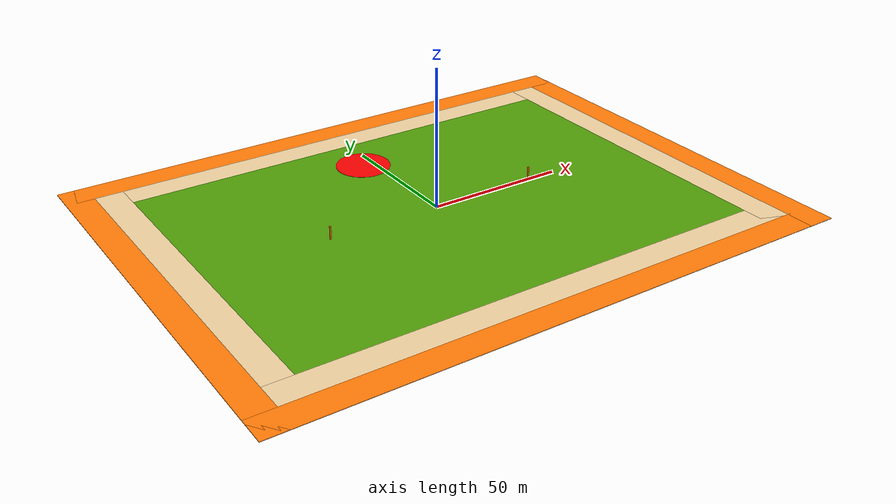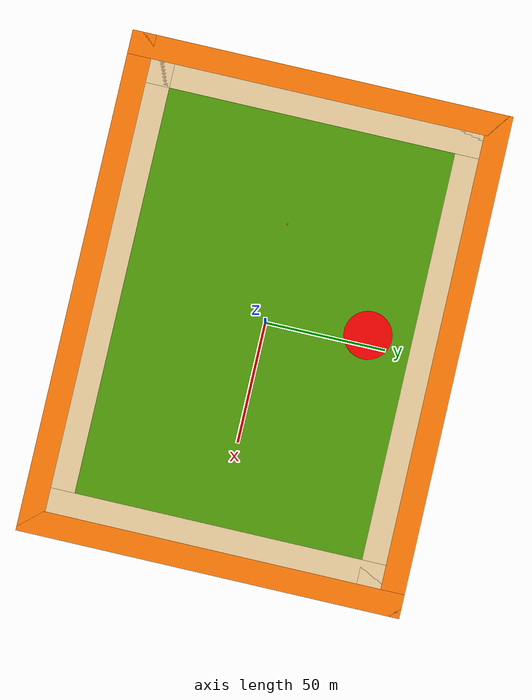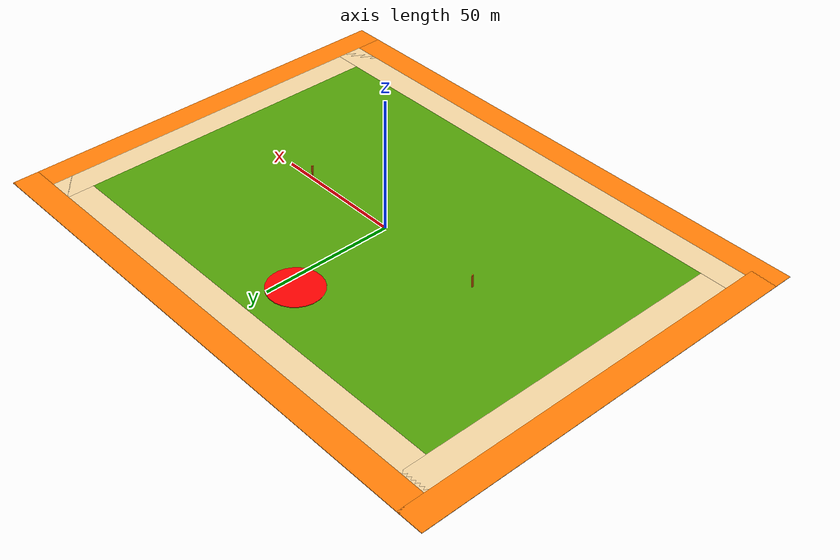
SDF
<sdf version="1.6">
 <world name="default">
  <light name="sun" type="directional">
   <pose>0 0 10 0 -0 0</pose>
   <diffuse>0.8 0.8 0.8 1</diffuse>
   <specular>0.2 0.2 0.2 1</specular>
   <attenuation>
    <range>1000</range>
    <constant>0.9</constant>
    <linear>0.01</linear>
    <quadratic>0.001</quadratic>
   </attenuation>
   <direction>-0.5 0.1 -0.9</direction>
  </light>
  <gravity>0 0 -9.8</gravity>
  <magnetic_field>6e-06 2.3e-05 -4.2e-05</magnetic_field>
  <atmosphere type="adiabatic"/>
  <physics name="default_physics" default="0" type="ode">
   <max_step_size>0.001</max_step_size>
   <real_time_factor>1</real_time_factor>
   <real_time_update_rate>1000</real_time_update_rate>
  </physics>
  <scene><ambient>0.4 0.4 0.4 1</ambient><background>0.7 0.7 0.7 1</background><shadows>1</shadows></scene>
  <spherical_coordinates>
   <surface_model>EARTH_WGS84</surface_model>
   <latitude_deg>0</latitude_deg>
   <longitude_deg>0</longitude_deg>
   <elevation>0</elevation>
   <heading_deg>0</heading_deg>
  </spherical_coordinates>
  <model name="area">
   <link name="link_2">
    <inertial>
     <mass>89.6892</mass>
     <inertia><ixx>2228.16</ixx><ixy>0</ixy><ixz>0</ixz><iyy>2228.16</iyy><iyz>0</iyz><izz>4455.56</izz></inertia>
    </inertial>
    <pose>-0.084386 0.192992 0 0 -0 0</pose>
    <visual name="visual">
     <geometry><cylinder><radius>9.96773</radius><length>0.225675</length></cylinder></geometry>
     <material>
      <lighting>1</lighting>
      <script><uri>file://media/materials/scripts/gazebo.material</uri><name>Gazebo/Grey</name></script>
      <shader type="pixel"><normal_map>__default__</normal_map></shader>
      <ambient>0.953 0 0 1</ambient>
      <diffuse>0.7 0.7 0.7 1</diffuse>
      <specular>0.01 0.01 0.01 1</specular>
      <emissive>0 0 0 1</emissive>
     </material>
    </visual>
    <collision name="collision">
     <geometry><cylinder><radius>9.96773</radius><length>0.225675</length></cylinder></geometry>
     <surface>
      <friction>
       <ode><mu>1</mu><mu2>1</mu2><fdir1>0 0 0</fdir1><slip1>0</slip1><slip2>0</slip2></ode>
       <torsional>
        <coefficient>1</coefficient>
        <patch_radius>0</patch_radius>
        <surface_radius>0</surface_radius>
        <use_patch_radius>1</use_patch_radius>
        <ode><slip>0</slip></ode>
       </torsional>
      </friction>
      <bounce><restitution_coefficient>0</restitution_coefficient><threshold>1e+06</threshold></bounce>
      <contact>
       <collide_without_contact>0</collide_without_contact>
       <collide_without_contact_bitmask>1</collide_without_contact_bitmask>
       <collide_bitmask>1</collide_bitmask>
       <ode>
        <soft_cfm>0</soft_cfm>
        <soft_erp>0.2</soft_erp>
        <kp>1e+13</kp>
        <kd>1</kd>
        <max_vel>0.01</max_vel>
        <min_depth>0</min_depth>
       </ode>
       <bullet>
        <split_impulse>1</split_impulse>
        <split_impulse_penetration_threshold>-0.01</split_impulse_penetration_threshold>
        <soft_cfm>0</soft_cfm>
        <soft_erp>0.2</soft_erp>
        <kp>1e+13</kp>
        <kd>1</kd>
       </bullet>
      </contact>
     </surface>
    </collision>
   </link>
   <static>0</static>
   <pose>-4.27218 41.8251 0.312837 0.008005 -0.012822 0.699371</pose>
  </model>
  <model name="Untitled">
   <link name="Wall_38">
    <pose>0 65 0 0 -0 0</pose>
    <visual name="Wall_38_Visual">
     <pose>0 0 0.1 0 -0 0</pose>
     <geometry><box><size>190 10 0.2</size></box></geometry>
     <material>
      <script><uri>file://media/materials/scripts/gazebo.material</uri><name>Gazebo/Grey</name></script>
      <ambient>0.921569 0.807843 0.615686 1</ambient>
      <shader type="pixel"/>
     </material>
     <meta><layer>0</layer></meta>
    </visual>
    <collision name="Wall_38_Collision">
     <pose>0 0 0.1 0 -0 0</pose>
     <geometry><box><size>190 10 0.2</size></box></geometry>
     <surface>
      <friction>
       <ode><mu>1</mu><mu2>1</mu2><fdir1>0 0 0</fdir1><slip1>0</slip1><slip2>0</slip2></ode>
       <torsional>
        <coefficient>1</coefficient>
        <patch_radius>0</patch_radius>
        <surface_radius>0</surface_radius>
        <use_patch_radius>1</use_patch_radius>
        <ode><slip>0</slip></ode>
       </torsional>
      </friction>
      <bounce><restitution_coefficient>0</restitution_coefficient><threshold>1e+06</threshold></bounce>
      <contact>
       <collide_without_contact>0</collide_without_contact>
       <collide_without_contact_bitmask>1</collide_without_contact_bitmask>
       <collide_bitmask>1</collide_bitmask>
       <ode>
        <soft_cfm>0</soft_cfm>
        <soft_erp>0.2</soft_erp>
        <kp>1e+13</kp>
        <kd>1</kd>
        <max_vel>0.01</max_vel>
        <min_depth>0</min_depth>
       </ode>
       <bullet>
        <split_impulse>1</split_impulse>
        <split_impulse_penetration_threshold>-0.01</split_impulse_penetration_threshold>
        <soft_cfm>0</soft_cfm>
        <soft_erp>0.2</soft_erp>
        <kp>1e+13</kp>
        <kd>1</kd>
       </bullet>
      </contact>
     </surface>
    </collision>
   </link>
   <link name="Wall_42">
    <pose>0 -65 0 0 -0 0</pose>
    <visual name="Wall_42_Visual">
     <pose>0 0 0.1 0 -0 0</pose>
     <geometry><box><size>190 10 0.2</size></box></geometry>
     <material>
      <script><uri>file://media/materials/scripts/gazebo.material</uri><name>Gazebo/Grey</name></script>
      <ambient>0.921569 0.807843 0.615686 1</ambient>
      <shader type="pixel"/>
     </material>
     <meta><layer>0</layer></meta>
    </visual>
    <collision name="Wall_42_Collision">
     <pose>0 0 0.1 0 -0 0</pose>
     <geometry><box><size>190 10 0.2</size></box></geometry>
     <surface>
      <friction>
       <ode><mu>1</mu><mu2>1</mu2><fdir1>0 0 0</fdir1><slip1>0</slip1><slip2>0</slip2></ode>
       <torsional>
        <coefficient>1</coefficient>
        <patch_radius>0</patch_radius>
        <surface_radius>0</surface_radius>
        <use_patch_radius>1</use_patch_radius>
        <ode><slip>0</slip></ode>
       </torsional>
      </friction>
      <bounce><restitution_coefficient>0</restitution_coefficient><threshold>1e+06</threshold></bounce>
      <contact>
       <collide_without_contact>0</collide_without_contact>
       <collide_without_contact_bitmask>1</collide_without_contact_bitmask>
       <collide_bitmask>1</collide_bitmask>
       <ode>
        <soft_cfm>0</soft_cfm>
        <soft_erp>0.2</soft_erp>
        <kp>1e+13</kp>
        <kd>1</kd>
        <max_vel>0.01</max_vel>
        <min_depth>0</min_depth>
       </ode>
       <bullet>
        <split_impulse>1</split_impulse>
        <split_impulse_penetration_threshold>-0.01</split_impulse_penetration_threshold>
        <soft_cfm>0</soft_cfm>
        <soft_erp>0.2</soft_erp>
        <kp>1e+13</kp>
        <kd>1</kd>
       </bullet>
      </contact>
     </surface>
    </collision>
   </link>
   <link name="Wall_45">
    <pose>-90 0 0 0 0 -1.5708</pose>
    <visual name="Wall_45_Visual">
     <pose>0 0 0.1 0 -0 0</pose>
     <geometry><box><size>140 10 0.2</size></box></geometry>
     <material>
      <script><uri>file://media/materials/scripts/gazebo.material</uri><name>Gazebo/Grey</name></script>
      <ambient>0.921569 0.807843 0.615686 1</ambient>
      <shader type="pixel"/>
     </material>
     <meta><layer>0</layer></meta>
    </visual>
    <collision name="Wall_45_Collision">
     <pose>0 0 0.1 0 -0 0</pose>
     <geometry><box><size>140 10 0.2</size></box></geometry>
     <surface>
      <friction>
       <ode><mu>1</mu><mu2>1</mu2><fdir1>0 0 0</fdir1><slip1>0</slip1><slip2>0</slip2></ode>
       <torsional>
        <coefficient>1</coefficient>
        <patch_radius>0</patch_radius>
        <surface_radius>0</surface_radius>
        <use_patch_radius>1</use_patch_radius>
        <ode><slip>0</slip></ode>
       </torsional>
      </friction>
      <bounce><restitution_coefficient>0</restitution_coefficient><threshold>1e+06</threshold></bounce>
      <contact>
       <collide_without_contact>0</collide_without_contact>
       <collide_without_contact_bitmask>1</collide_without_contact_bitmask>
       <collide_bitmask>1</collide_bitmask>
       <ode>
        <soft_cfm>0</soft_cfm>
        <soft_erp>0.2</soft_erp>
        <kp>1e+13</kp>
        <kd>1</kd>
        <max_vel>0.01</max_vel>
        <min_depth>0</min_depth>
       </ode>
       <bullet>
        <split_impulse>1</split_impulse>
        <split_impulse_penetration_threshold>-0.01</split_impulse_penetration_threshold>
        <soft_cfm>0</soft_cfm>
        <soft_erp>0.2</soft_erp>
        <kp>1e+13</kp>
        <kd>1</kd>
       </bullet>
      </contact>
     </surface>
    </collision>
   </link>
   <link name="Wall_47">
    <pose>90 0 0 0 0 -1.5708</pose>
    <visual name="Wall_47_Visual">
     <pose>0 0 0.1 0 -0 0</pose>
     <geometry><box><size>140 10 0.2</size></box></geometry>
     <material>
      <script><uri>file://media/materials/scripts/gazebo.material</uri><name>Gazebo/Grey</name></script>
      <ambient>0.921569 0.807843 0.615686 1</ambient>
      <shader type="pixel"/>
     </material>
     <meta><layer>0</layer></meta>
    </visual>
    <collision name="Wall_47_Collision">
     <pose>0 0 0.1 0 -0 0</pose>
     <geometry><box><size>140 10 0.2</size></box></geometry>
     <surface>
      <friction>
       <ode><mu>1</mu><mu2>1</mu2><fdir1>0 0 0</fdir1><slip1>0</slip1><slip2>0</slip2></ode>
       <torsional>
        <coefficient>1</coefficient>
        <patch_radius>0</patch_radius>
        <surface_radius>0</surface_radius>
        <use_patch_radius>1</use_patch_radius>
        <ode><slip>0</slip></ode>
       </torsional>
      </friction>
      <bounce><restitution_coefficient>0</restitution_coefficient><threshold>1e+06</threshold></bounce>
      <contact>
       <collide_without_contact>0</collide_without_contact>
       <collide_without_contact_bitmask>1</collide_without_contact_bitmask>
       <collide_bitmask>1</collide_bitmask>
       <ode>
        <soft_cfm>0</soft_cfm>
        <soft_erp>0.2</soft_erp>
        <kp>1e+13</kp>
        <kd>1</kd>
        <max_vel>0.01</max_vel>
        <min_depth>0</min_depth>
       </ode>
       <bullet>
        <split_impulse>1</split_impulse>
        <split_impulse_penetration_threshold>-0.01</split_impulse_penetration_threshold>
        <soft_cfm>0</soft_cfm>
        <soft_erp>0.2</soft_erp>
        <kp>1e+13</kp>
        <kd>1</kd>
       </bullet>
      </contact>
     </surface>
    </collision>
   </link>
   <link name="Wall_51">
    <pose>100 0 0 0 0 -1.5708</pose>
    <visual name="Wall_51_Visual">
     <pose>0 0 0.1 0 -0 0</pose>
     <geometry><box><size>160 10 0.2</size></box></geometry>
     <material>
      <script><uri>file://media/materials/scripts/gazebo.material</uri><name>Gazebo/Grey</name></script>
      <ambient>0.996078 0.47451 0.0196078 1</ambient>
      <shader type="pixel"/>
     </material>
     <meta><layer>0</layer></meta>
    </visual>
    <collision name="Wall_51_Collision">
     <pose>0 0 0.1 0 -0 0</pose>
     <geometry><box><size>160 10 0.2</size></box></geometry>
     <surface>
      <friction>
       <ode><mu>1</mu><mu2>1</mu2><fdir1>0 0 0</fdir1><slip1>0</slip1><slip2>0</slip2></ode>
       <torsional>
        <coefficient>1</coefficient>
        <patch_radius>0</patch_radius>
        <surface_radius>0</surface_radius>
        <use_patch_radius>1</use_patch_radius>
        <ode><slip>0</slip></ode>
       </torsional>
      </friction>
      <bounce><restitution_coefficient>0</restitution_coefficient><threshold>1e+06</threshold></bounce>
      <contact>
       <collide_without_contact>0</collide_without_contact>
       <collide_without_contact_bitmask>1</collide_without_contact_bitmask>
       <collide_bitmask>1</collide_bitmask>
       <ode>
        <soft_cfm>0</soft_cfm>
        <soft_erp>0.2</soft_erp>
        <kp>1e+13</kp>
        <kd>1</kd>
        <max_vel>0.01</max_vel>
        <min_depth>0</min_depth>
       </ode>
       <bullet>
        <split_impulse>1</split_impulse>
        <split_impulse_penetration_threshold>-0.01</split_impulse_penetration_threshold>
        <soft_cfm>0</soft_cfm>
        <soft_erp>0.2</soft_erp>
        <kp>1e+13</kp>
        <kd>1</kd>
       </bullet>
      </contact>
     </surface>
    </collision>
   </link>
   <link name="Wall_54">
    <pose>-100 0 0 0 0 -1.5708</pose>
    <visual name="Wall_54_Visual">
     <pose>0 0 0.1 0 -0 0</pose>
     <geometry><box><size>160 10 0.2</size></box></geometry>
     <material>
      <script><uri>file://media/materials/scripts/gazebo.material</uri><name>Gazebo/Grey</name></script>
      <ambient>0.996078 0.47451 0.0196078 1</ambient>
      <shader type="pixel"/>
     </material>
     <meta><layer>0</layer></meta>
    </visual>
    <collision name="Wall_54_Collision">
     <pose>0 0 0.1 0 -0 0</pose>
     <geometry><box><size>160 10 0.2</size></box></geometry>
     <surface>
      <friction>
       <ode><mu>1</mu><mu2>1</mu2><fdir1>0 0 0</fdir1><slip1>0</slip1><slip2>0</slip2></ode>
       <torsional>
        <coefficient>1</coefficient>
        <patch_radius>0</patch_radius>
        <surface_radius>0</surface_radius>
        <use_patch_radius>1</use_patch_radius>
        <ode><slip>0</slip></ode>
       </torsional>
      </friction>
      <bounce><restitution_coefficient>0</restitution_coefficient><threshold>1e+06</threshold></bounce>
      <contact>
       <collide_without_contact>0</collide_without_contact>
       <collide_without_contact_bitmask>1</collide_without_contact_bitmask>
       <collide_bitmask>1</collide_bitmask>
       <ode>
        <soft_cfm>0</soft_cfm>
        <soft_erp>0.2</soft_erp>
        <kp>1e+13</kp>
        <kd>1</kd>
        <max_vel>0.01</max_vel>
        <min_depth>0</min_depth>
       </ode>
       <bullet>
        <split_impulse>1</split_impulse>
        <split_impulse_penetration_threshold>-0.01</split_impulse_penetration_threshold>
        <soft_cfm>0</soft_cfm>
        <soft_erp>0.2</soft_erp>
        <kp>1e+13</kp>
        <kd>1</kd>
       </bullet>
      </contact>
     </surface>
    </collision>
   </link>
   <link name="Wall_56">
    <pose>0 75 0 0 -0 0</pose>
    <visual name="Wall_56_Visual">
     <pose>0 0 0.1 0 -0 0</pose>
     <geometry><box><size>210 10 0.2</size></box></geometry>
     <material>
      <script><uri>file://media/materials/scripts/gazebo.material</uri><name>Gazebo/Grey</name></script>
      <ambient>0.996078 0.47451 0.0196078 1</ambient>
      <shader type="pixel"/>
     </material>
     <meta><layer>0</layer></meta>
    </visual>
    <collision name="Wall_56_Collision">
     <pose>0 0 0.1 0 -0 0</pose>
     <geometry><box><size>210 10 0.2</size></box></geometry>
     <surface>
      <friction>
       <ode><mu>1</mu><mu2>1</mu2><fdir1>0 0 0</fdir1><slip1>0</slip1><slip2>0</slip2></ode>
       <torsional>
        <coefficient>1</coefficient>
        <patch_radius>0</patch_radius>
        <surface_radius>0</surface_radius>
        <use_patch_radius>1</use_patch_radius>
        <ode><slip>0</slip></ode>
       </torsional>
      </friction>
      <bounce><restitution_coefficient>0</restitution_coefficient><threshold>1e+06</threshold></bounce>
      <contact>
       <collide_without_contact>0</collide_without_contact>
       <collide_without_contact_bitmask>1</collide_without_contact_bitmask>
       <collide_bitmask>1</collide_bitmask>
       <ode>
        <soft_cfm>0</soft_cfm>
        <soft_erp>0.2</soft_erp>
        <kp>1e+13</kp>
        <kd>1</kd>
        <max_vel>0.01</max_vel>
        <min_depth>0</min_depth>
       </ode>
       <bullet>
        <split_impulse>1</split_impulse>
        <split_impulse_penetration_threshold>-0.01</split_impulse_penetration_threshold>
        <soft_cfm>0</soft_cfm>
        <soft_erp>0.2</soft_erp>
        <kp>1e+13</kp>
        <kd>1</kd>
       </bullet>
      </contact>
     </surface>
    </collision>
   </link>
   <link name="Wall_60">
    <pose>0 -75 0 0 -0 0</pose>
    <visual name="Wall_60_Visual">
     <pose>0 0 0.1 0 -0 0</pose>
     <geometry><box><size>210 10 0.2</size></box></geometry>
     <material>
      <script><uri>file://media/materials/scripts/gazebo.material</uri><name>Gazebo/Grey</name></script>
      <ambient>0.996078 0.47451 0.0196078 1</ambient>
      <shader type="pixel"/>
     </material>
     <meta><layer>0</layer></meta>
    </visual>
    <collision name="Wall_60_Collision">
     <pose>0 0 0.1 0 -0 0</pose>
     <geometry><box><size>210 10 0.2</size></box></geometry>
     <surface>
      <friction>
       <ode><mu>1</mu><mu2>1</mu2><fdir1>0 0 0</fdir1><slip1>0</slip1><slip2>0</slip2></ode>
       <torsional>
        <coefficient>1</coefficient>
        <patch_radius>0</patch_radius>
        <surface_radius>0</surface_radius>
        <use_patch_radius>1</use_patch_radius>
        <ode><slip>0</slip></ode>
       </torsional>
      </friction>
      <bounce><restitution_coefficient>0</restitution_coefficient><threshold>1e+06</threshold></bounce>
      <contact>
       <collide_without_contact>0</collide_without_contact>
       <collide_without_contact_bitmask>1</collide_without_contact_bitmask>
       <collide_bitmask>1</collide_bitmask>
       <ode>
        <soft_cfm>0</soft_cfm>
        <soft_erp>0.2</soft_erp>
        <kp>1e+13</kp>
        <kd>1</kd>
        <max_vel>0.01</max_vel>
        <min_depth>0</min_depth>
       </ode>
       <bullet>
        <split_impulse>1</split_impulse>
        <split_impulse_penetration_threshold>-0.01</split_impulse_penetration_threshold>
        <soft_cfm>0</soft_cfm>
        <soft_erp>0.2</soft_erp>
        <kp>1e+13</kp>
        <kd>1</kd>
       </bullet>
      </contact>
     </surface>
    </collision>
   </link>
   <static>1</static>
  </model>
  <model name="Untitled_0">
   <pose>-1.24292 -0.308113 0 0 -0 0</pose>
   <link name="Wall_0">
    <collision name="Wall_0_Collision">
     <geometry><box><size>0.5 0.5 5</size></box></geometry>
     <pose>0 0 2.5 0 -0 0</pose>
    </collision>
    <visual name="Wall_0_Visual">
     <pose>0 0 2.5 0 -0 0</pose>
     <geometry><box><size>0.5 0.5 5</size></box></geometry>
     <material>
      <script><uri>file://media/materials/scripts/gazebo.material</uri><name>Gazebo/Grey</name></script>
      <ambient>0.996078 0.47451 0.0196078 1</ambient>
     </material>
     <meta><layer>0</layer></meta>
    </visual>
    <pose>-40 0 0 0 -0 0</pose>
   </link>
   <link name="Wall_2">
    <collision name="Wall_2_Collision">
     <geometry><box><size>0.5 0.5 5</size></box></geometry>
     <pose>0 0 2.5 0 -0 0</pose>
    </collision>
    <visual name="Wall_2_Visual">
     <pose>0 0 2.5 0 -0 0</pose>
     <geometry><box><size>0.5 0.5 5</size></box></geometry>
     <material>
      <script><uri>file://media/materials/scripts/gazebo.material</uri><name>Gazebo/Grey</name></script>
      <ambient>0.996078 0.47451 0.0196078 1</ambient>
     </material>
     <meta><layer>0</layer></meta>
    </visual>
    <pose>40 0 0 0 -0 0</pose>
   </link>
   <static>1</static>
  </model>
  <model name="cimen">
   <link name="Wall_105">
    <inertial>
     <mass>1</mass>
     <inertia><ixx>1</ixx><ixy>0</ixy><ixz>0</ixz><iyy>1</iyy><iyz>0</iyz><izz>1</izz></inertia>
    </inertial>
    <visual name="Wall_105_Visual">
     <pose>0 0 0.1 0 -0 0</pose>
     <geometry><box><size>170 120 0.2</size></box></geometry>
     <material>
      <script><uri>file://media/materials/scripts/gazebo.material</uri><name>Gazebo/Grey</name></script>
      <ambient>0.306 0.604 0.024 1</ambient>
      <shader type="pixel"><normal_map>__default__</normal_map></shader>
      <diffuse>0.7 0.7 0.7 1</diffuse>
      <specular>0.01 0.01 0.01 1</specular>
      <emissive>0 0 0 1</emissive>
     </material>
     <meta><layer>0</layer></meta>
    </visual>
    <collision name="Wall_105_Collision">
     <pose>0 0 0.1 0 -0 0</pose>
     <geometry><box><size>170 120 0.2</size></box></geometry>
     <surface>
      <friction>
       <ode><mu>1</mu><mu2>1</mu2><fdir1>0 0 0</fdir1><slip1>0</slip1><slip2>0</slip2></ode>
       <torsional>
        <coefficient>1</coefficient>
        <patch_radius>0</patch_radius>
        <surface_radius>0</surface_radius>
        <use_patch_radius>1</use_patch_radius>
        <ode><slip>0</slip></ode>
       </torsional>
      </friction>
      <bounce><restitution_coefficient>0</restitution_coefficient><threshold>1e+06</threshold></bounce>
      <contact>
       <collide_without_contact>0</collide_without_contact>
       <collide_without_contact_bitmask>1</collide_without_contact_bitmask>
       <collide_bitmask>1</collide_bitmask>
       <ode>
        <soft_cfm>0</soft_cfm>
        <soft_erp>0.2</soft_erp>
        <kp>1e+13</kp>
        <kd>1</kd>
        <max_vel>0.01</max_vel>
        <min_depth>0</min_depth>
       </ode>
       <bullet>
        <split_impulse>1</split_impulse>
        <split_impulse_penetration_threshold>-0.01</split_impulse_penetration_threshold>
        <soft_cfm>0</soft_cfm>
        <soft_erp>0.2</soft_erp>
        <kp>1e+13</kp>
        <kd>1</kd>
       </bullet>
      </contact>
     </surface>
    </collision>
   </link>
   <static>1</static>
  </model>
 </world>
</sdf>
